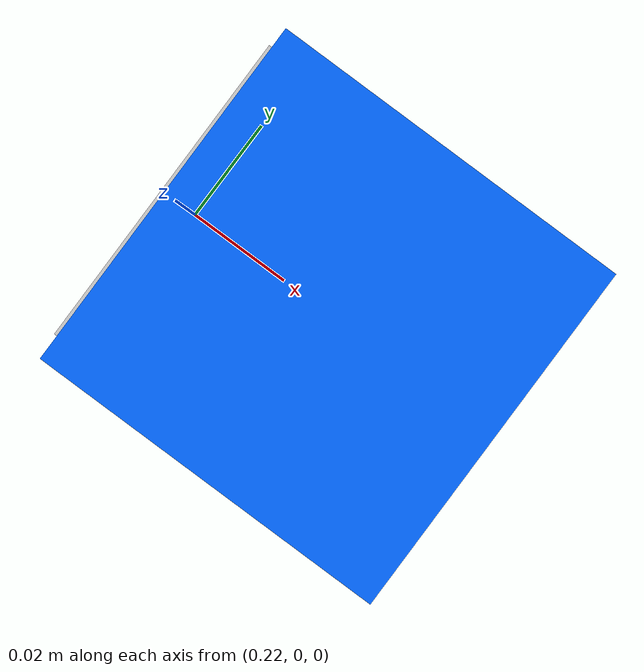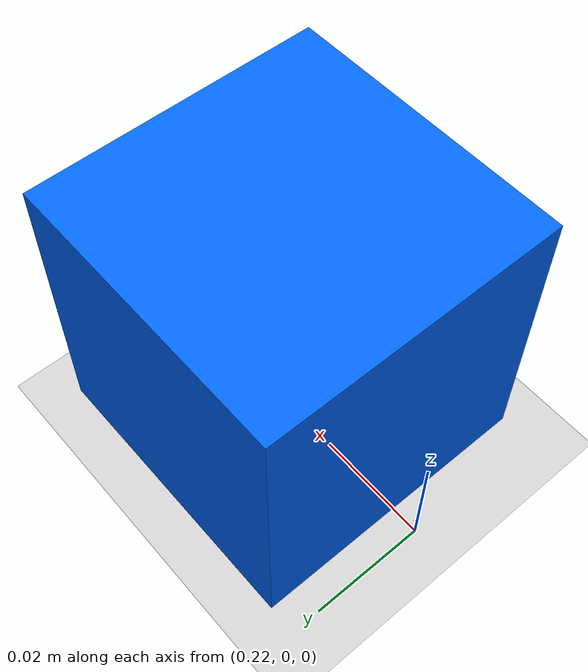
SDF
<?xml version="1.0"?>
<sdf version="1.10">
  <world name="week0_spike">
    <physics name="1ms" type="ignored">
      <max_step_size>0.001</max_step_size>
      <real_time_factor>1.0</real_time_factor>
    </physics>

    <plugin filename="gz-sim-physics-system"
            name="gz::sim::systems::Physics"/>
    <plugin filename="gz-sim-user-commands-system"
            name="gz::sim::systems::UserCommands"/>
    <plugin filename="gz-sim-scene-broadcaster-system"
            name="gz::sim::systems::SceneBroadcaster"/>

    <light name="sun" type="directional">
      <pose>0 0 10 0 0 0</pose>
      <cast_shadows>true</cast_shadows>
      <direction>-0.5 0.1 -0.9</direction>
      <diffuse>0.8 0.8 0.8 1</diffuse>
    </light>

    <model name="ground_plane">
      <static>true</static>
      <link name="link">
        <collision name="collision">
          <geometry>
            <plane>
              <normal>0 0 1</normal>
              <size>10 10</size>
            </plane>
          </geometry>
        </collision>
        <visual name="visual">
          <geometry>
            <plane>
              <normal>0 0 1</normal>
              <size>10 10</size>
            </plane>
          </geometry>
        </visual>
      </link>
    </model>

    <model name="spike_cube">
      <pose>0.25 0 0.025 0 0 0</pose>
      <link name="link">
        <inertial>
          <mass>0.05</mass>
          <inertia>
            <ixx>2.083333e-5</ixx>
            <iyy>2.083333e-5</iyy>
            <izz>2.083333e-5</izz>
            <ixy>0</ixy>
            <ixz>0</ixz>
            <iyz>0</iyz>
          </inertia>
        </inertial>
        <collision name="collision">
          <geometry>
            <box><size>0.05 0.05 0.05</size></box>
          </geometry>
        </collision>
        <visual name="visual">
          <geometry>
            <box><size>0.05 0.05 0.05</size></box>
          </geometry>
          <material>
            <ambient>0.0 0.4 1.0 1</ambient>
            <diffuse>0.0 0.4 1.0 1</diffuse>
          </material>
        </visual>
      </link>

      <plugin filename="gz-sim-odometry-publisher-system"
              name="gz::sim::systems::OdometryPublisher">
        <odom_frame>world</odom_frame>
        <robot_base_frame>spike_cube</robot_base_frame>
        <odom_publish_frequency>50</odom_publish_frequency>
        <odom_topic>/spike_cube/odometry</odom_topic>
        <dimensions>3</dimensions>
      </plugin>
    </model>
  </world>
</sdf>
